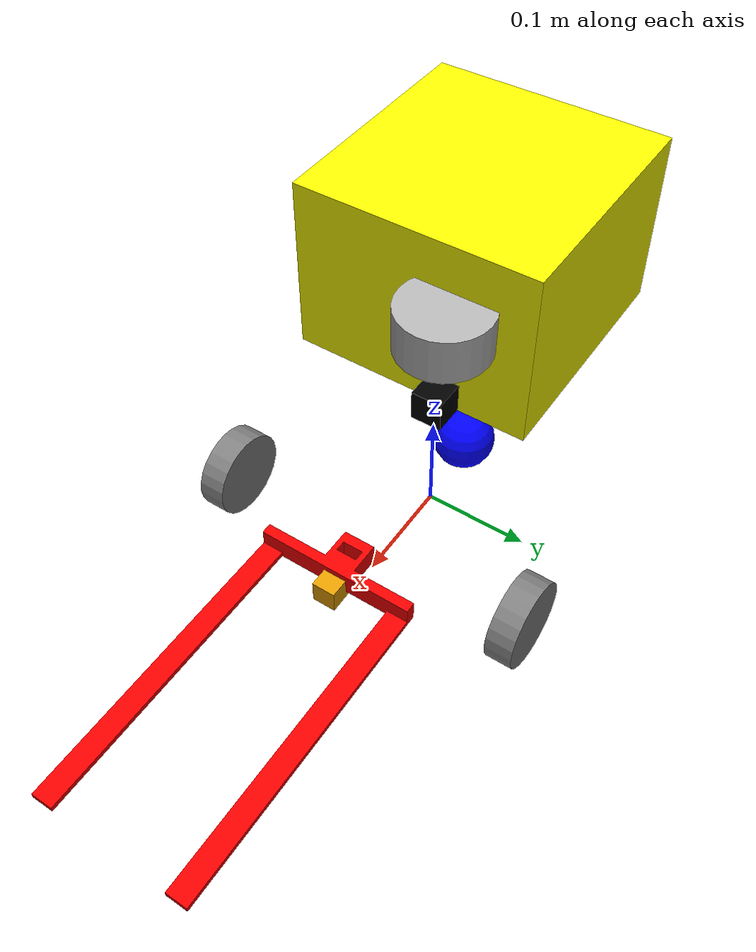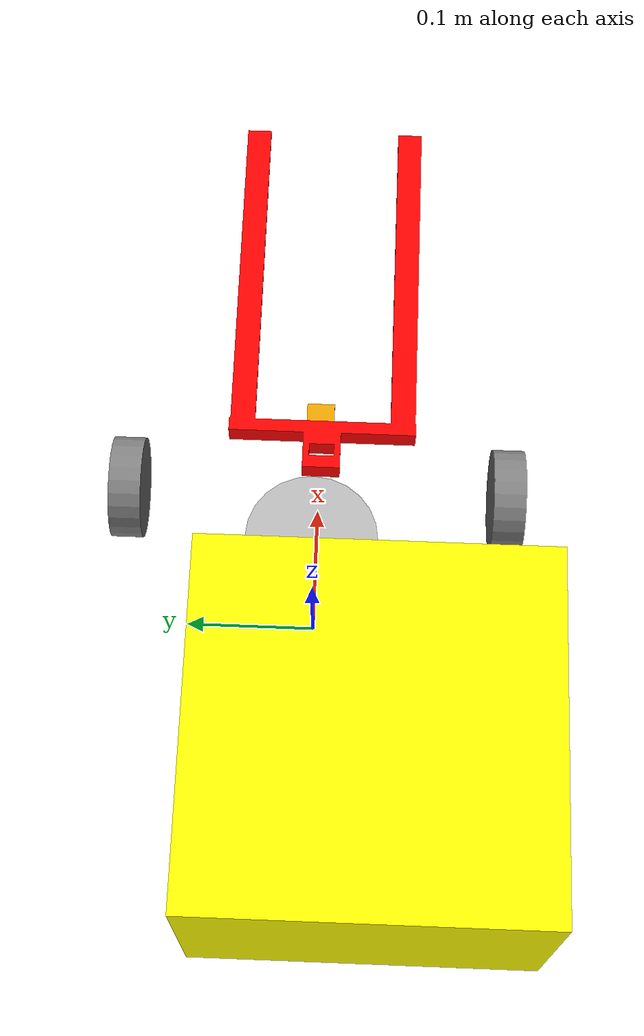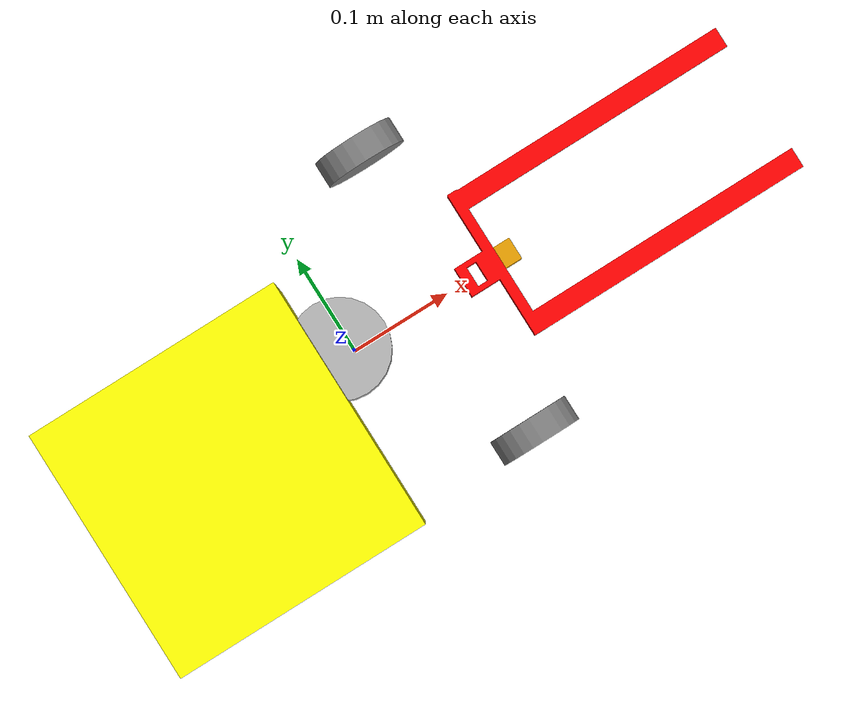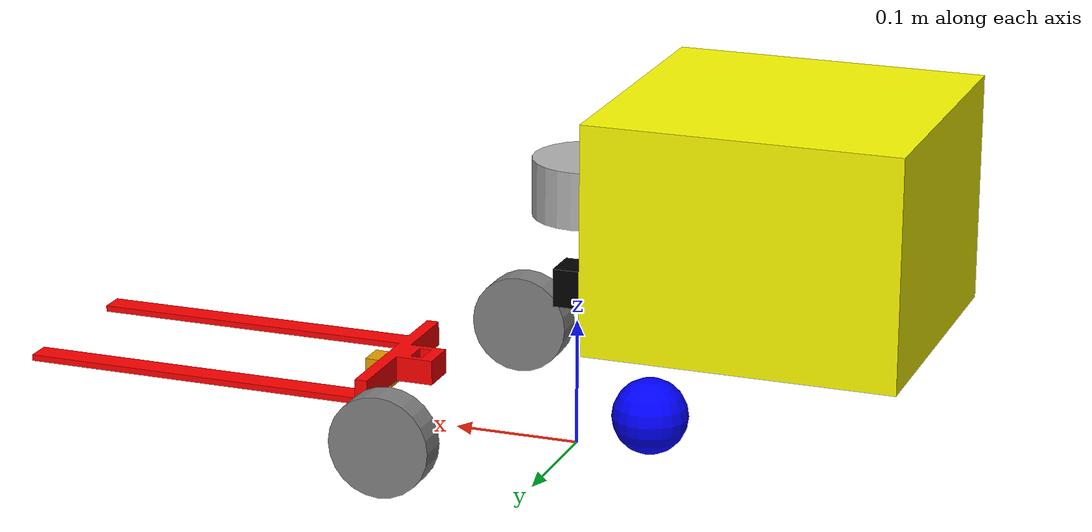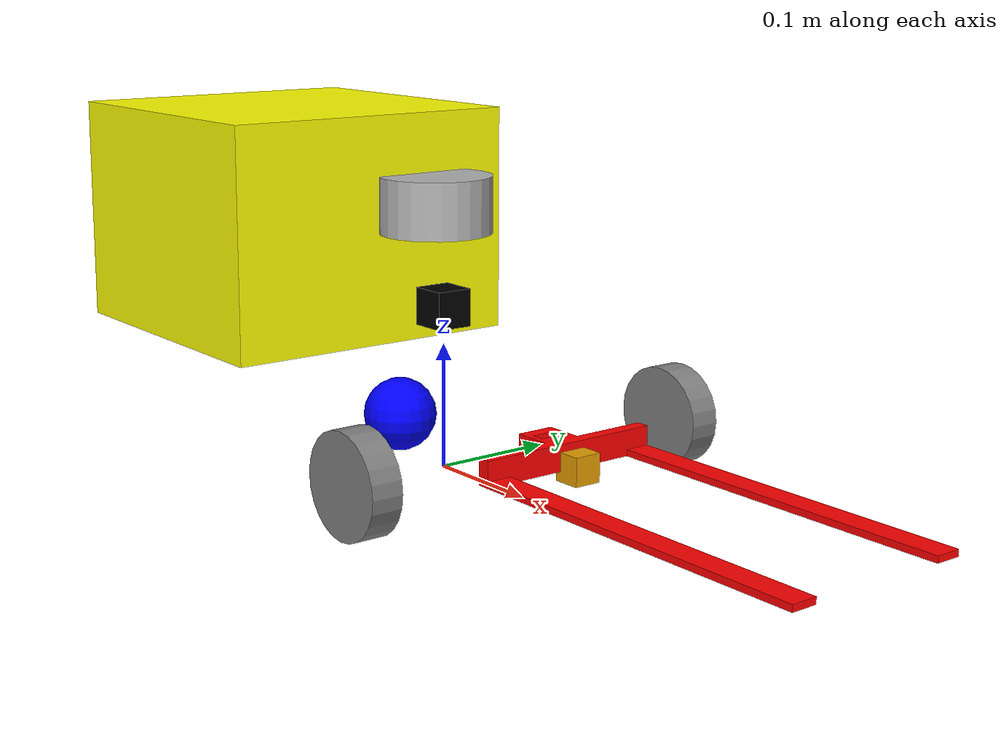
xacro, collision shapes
<?xml version="1.0"?>
<robot name="forklift" xmlns:xacro="http://www.ros.org/wiki/xacro">
    <xacro:arg name="GAZEBO" default="true"/>
    <xacro:arg name="wheel_odom_topic" default="odom" />
    <xacro:arg name="odometry_source" default="world" />
    <xacro:arg name="robot_name" default="" />

    <xacro:property name="odometry_source" value="$(arg odometry_source)"/>
    <xacro:property name="robot_name" value="$(arg robot_name)"/>
    <!-- Constants and Includes -->
     <xacro:include filename="$(find forklift_description)/urdf/const.xacro"/>
    <xacro:include filename="$(find forklift_description)/urdf/material.xacro"/>
    <xacro:include filename="$(find forklift_description)/urdf/inertia.xacro"/>
    <xacro:include filename="$(find forklift_description)/urdf/wheel.xacro"/>
    <xacro:include filename="$(find forklift_description)/urdf/lift.xacro"/>
    <xacro:include filename="$(find forklift_description)/urdf/transmission.xacro"/>

    <xacro:if value="$(arg GAZEBO)">
        <xacro:include filename="$(find forklift_description)/urdf/gazebo.xacro"/>
        <xacro:gz_plugins prefix="${robot_name}"/>
    </xacro:if>
    <xacro:unless value="$(arg GAZEBO)">
        <xacro:include filename="$(find forklift_description)/urdf/ros2_control.xacro"/>
    </xacro:unless>

    <!-- ................................ BASE LINK .................................. -->
    <link name="base_footprint"/>

    <link name="base_link">
        <visual>
            <origin xyz="-0.15 -0.045 0.15" rpy="0 0 3.14159"/>
            <geometry>
                <mesh filename="package://forklift_description/meshes/mini_forklift_base.stl" scale="0.001 0.001 0.001"/>
            </geometry>
            <material name="yellow"/>
        </visual>
        <collision>
            <origin xyz="-0.15 -0.045 0.15" rpy="0 0 3.14159"/>
            <geometry>
                <box size="${base_length} ${base_width} ${base_height}"/>
            </geometry>
        </collision>
        <xacro:box_inertia m="${mass_base}" x="${base_length}" y="${base_width}" z="${base_height}"/>
    </link>

    <joint name="base_joint" type="fixed">
        <parent link="base_footprint"/>
        <child link="base_link"/>
        <origin xyz="0.0 0.0 ${wheel_radius}" rpy="0 0 0"/>
    </joint>

    <!-- Wheels -->
    <xacro:wheel prefix="left_wheel" x_reflect="-1" y_reflect="1"/>
    <xacro:wheel prefix="right_wheel" x_reflect="1" y_reflect="-1"/>

    <!-- Fork lift -->
    <xacro:lift prefix="lift"/>

    <!-- Transmissions must come after joint definitions -->
    <xacro:add_transmissions/>

    <link name="front_caster">
        <visual>
            <geometry>
                <sphere radius="${caster_radius}"/>
            </geometry>
            <material name="Blue">
                <color rgba="0 0 1.0 1.0"/>
            </material>
        </visual>

        <collision>
            <geometry>
                <sphere radius="${caster_radius}"/>
            </geometry>
        </collision>
        <xacro:sphere_inertia m="${mass_caster}" r="${caster_radius}" />

    </link>

    <joint name="caster_joint" type="fixed">
        <parent link="base_link"/>
        <child link="front_caster"/>
        <origin xyz="${-1*caster_xoff} 0.0 -0.01" rpy="0 0 0"/>
    </joint>
    <gazebo reference="front_caster">
        <mu1>0.1</mu1>
        <mu2>0.1</mu2>
    </gazebo>

    <!-- IMU -->
    <link name='imu_link'>
        <visual>
            <geometry>
                <box size="0.03 0.03 0.03"/>
            </geometry>
            <material name="Black">
                <color rgba="0 0 0.0 1.0"/>
            </material>
        </visual>

        <collision>
            <geometry>
                <box size="0.03 0.03 0.03"/>
            </geometry>
        </collision>

        <xacro:box_inertia m="0.1" x="0.03" y="0.03" z="0.03"/>
    </link>

    <joint name='imu_joint' type='fixed'>
        <parent link='base_link'/>
        <child link='imu_link'/>
        <origin xyz="0.0 0.0 ${base_height/2}" rpy="0 0 0"/>
    </joint>

    <!-- RPLIDAR -->
    <link name="lidar_link">
        <visual>
            <origin xyz="0 0 -0.0" rpy="0 0 0"/>
            <geometry>
                <mesh filename="package://forklift_description/meshes/ydlidar_x2_assy.dae" scale="1 1 1"/>
            </geometry>
        </visual>
        <collision>
            <origin xyz="0 0 0" rpy="0 0 0"/>
            <geometry>
                <cylinder radius="${lidar_radius}" length="${lidar_length}"/>
            </geometry>
        </collision>
        <inertial>
            <origin xyz="0.007 0 0.025" rpy="0 0 0"/>
            <mass value="${mass_lidar}"/>
            <inertia ixx="0.000058" ixy="0" ixz="0.000005" iyy="0.000099" iyz="0" izz="0.000103"/>
        </inertial>
    </link>

    <joint name="lidar_joint" type="fixed">
        <parent link="base_link"/>
        <child link="lidar_link"/>
        <origin xyz="-0.01 0.0 ${base_height-0.01}" rpy="0 0 0"/>
    </joint>

    <!-- Raspberry Pi Camera V2 -->
    <link name="camera_link">
        <visual>
            <origin xyz="0 0 -0.0" rpy="0 0.0 0"/>
            <geometry>
                <mesh filename="package://forklift_description/meshes/front_camera.dae" scale="1 1 1"/>
            </geometry>
        </visual>
        <collision>
            <origin xyz="0 0 0" rpy="0 0.0 0"/>
            <geometry>
                <box size="${camera_width} ${camera_length} ${camera_height}"/>
            </geometry>
        </collision>
        <inertial>
            <origin xyz="0.005 0 0.013" rpy="0 0 0"/>
            <mass value="${mass_camera}"/>
            <inertia ixx="0.000005" ixy="0" ixz="-0.000001" iyy="0.000004" iyz="0" izz="0.000003"/>
        </inertial>
    </link>

    <joint name="camera_joint" type="fixed">
        <parent link="lift_link"/>
        <child link="camera_link"/>
        <origin xyz="0.01 0 0" rpy="0 0.0 0"/>
    </joint>

</robot>

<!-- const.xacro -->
<robot xmlns:xacro="http://www.ros.org/wiki/xacro">
    <xacro:property name="PI" value="3.141592653589793"/>

    <xacro:property name="base_length" value="0.245"/>
    <xacro:property name="base_width" value="0.2426"/>
    <xacro:property name="base_height" value="0.18"/>

    <!-- Mounting bolt pattern on base plate (from drawing sheet 2) -->
    <xacro:property name="base_bolt_pattern_x" value="0.150"/>
    <xacro:property name="base_bolt_pattern_y" value="0.110"/>
    <xacro:property name="base_bolt_hole_dia" value="0.020"/>
    <xacro:property name="base_plate_thickness" value="0.005"/>

    <!-- Kinematics -->
    <xacro:property name="wheel_radius" value="0.040"/>
    <xacro:property name="wheel_width" value="0.025"/>
    <xacro:property name="wheel_zoff" value="0.01"/>
    <xacro:property name="wheel_ygap" value="0.03"/>
    <xacro:property name="wheel_xoff" value="0.1"/>
    <xacro:property name="wheel_separation" value="0.3"/>

    <xacro:property name="caster_radius" value="0.03"/>
    <xacro:property name="caster_xoff" value="0.06"/>
    <xacro:property name="caster_yoff" value="0.0"/>

    <!-- ................................ LIFT SYSTEM ................................ -->
    <!-- Prismatic mast + forks riding on the front of base_link. -->
    <!-- lift_travel is a placeholder (150 mm stroke); set it to your actual mast stroke. -->
    <xacro:property name="lift_travel" value="0.15"/>
    <xacro:property name="lift_lower_limit" value="0.0"/>
    <xacro:property name="lift_upper_limit" value="${lift_travel}"/>
    <xacro:property name="lift_velocity" value="0.10"/>
    <xacro:property name="lift_effort" value="500"/>

    <!-- Where the lift joint mounts on base_link -->
    <xacro:property name="lift_xoff" value="${base_length/2}"/>
    <xacro:property name="lift_yoff" value="0.0"/>
    <xacro:property name="lift_zoff" value="${0}"/>

    <!-- Fork geometry (fork.stl) -->
    <xacro:property name="fork_length" value="0.30"/>
    <xacro:property name="fork_width" value="0.2426"/>
    <xacro:property name="fork_height" value="0.03"/>
    <xacro:property name="fork_xoff" value="0.10"/>

    <xacro:property name="mass_lift" value="1.0"/>
    <xacro:property name="mass_fork" value="0.5"/>

    <!-- Sensor -->
    <xacro:property name="imu_height" value="0.05"/>
    <xacro:property name="imu_offset" value="0.0"/>

    <xacro:property name="two_d_lidar_min_range" value="0.2"/>
    <xacro:property name="two_d_lidar_max_range" value="7"/>
    <xacro:property name="two_d_lidar_update_rate" value="30"/>

    <xacro:property name="lidar_length" value="0.045"/>
    <xacro:property name="lidar_radius" value="0.045"/>
    <xacro:property name="lidar_min_angle" value="0"/>
    <xacro:property name="lidar_max_angle" value="360"/>

    <xacro:property name="lidar_frame_id" value="lidar_link"/>
    <xacro:property name="camera_frame_id" value="camera_link"/>

    <xacro:property name="camera_width" value="0.022"/>
    <xacro:property name="camera_length" value="0.022"/>
    <xacro:property name="camera_height" value="0.022"/>

    <xacro:property name="ultrasonic_radius" value="0.02"/>
    <xacro:property name="ultrasonic_length" value="0.025"/>

    <!-- Define inertial properties  -->
    <xacro:property name="mass_base" value="3.0"/>
    <xacro:property name="mass_wheel" value="0.1"/>
    <xacro:property name="mass_caster" value="0.2"/>
    <xacro:property name="mass_imu" value="0.01"/>
    <xacro:property name="mass_lidar" value="0.150"/>
    <xacro:property name="mass_camera" value="0.050"/>

</robot>

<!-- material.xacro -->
<robot xmlns:xacro="http://www.ros.org/wiki/xacro">
    <material name="silver">
      <color rgba="0.7 0.7 0.7 1.0"/>
    </material>

    <material name="green">
      <color rgba="0.0 1.0 0.0 1.0"/>
    </material>

    <material name="black">
      <color rgba="0.0 0.0 0.0 1.0"/>
    </material>

    <material name="red">
      <color rgba="1.0 0.0 0.0 1.0"/>
    </material>

    <material name="blue">
      <color rgba="0.0 0.0 1.0 1.0"/>
    </material>

    <material name="white">
      <color rgba="1.0 1.0 1.0 1.0"/>
    </material>

    <material name="yellow">
      <color rgba="1.0 1.0 0.0 1.0"/>
    </material>

    <material name="orange">
      <color rgba="1.0 0.5 0.0 1.0"/>
    </material>

    <material name="gold">
      <color rgba="1.0 0.84 0.0 1.0"/>
    </material>

    <material name="gray">
      <color rgba="0.5 0.5 0.5 1.0"/>
    </material>

    <material name="turquoise">
        <color rgba="${64/255} ${224/255} ${208/255} 1.0"/>
    </material>

    <material name="purple">
        <color rgba="${128/255} ${0/255} ${128/255} 1.0"/>
    </material>

    <material name="aluminium">
        <color rgba="0.5 0.5 0.5 1"/>
    </material>

    <material name="plastic">
        <color rgba="0.1 0.1 0.1 1"/>
    </material>
</robot>

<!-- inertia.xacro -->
<robot xmlns:xacro="http://ros.org/wiki/xacro">
    <xacro:include filename="$(find forklift_description)/urdf/const.xacro"/>
    <!--................................ INERTIA MATRICES .............................. -->

    <xacro:macro name="cylinder_inertia" params="m r h">
        <inertial>
            <origin xyz="0 0 0" rpy="0 0 0"/>
            <mass value="${m}"/>
            <inertia
                ixx="${m * (3*r*r + h*h) / 12}" ixy="0" ixz="0"
                iyy="${m * (3*r*r + h*h) / 12}" iyz="0"
                izz="${m * r*r / 2}"/>
        </inertial>
    </xacro:macro>

    <xacro:macro name="box_inertia" params="m x y z">
        <inertial>
            <origin xyz="0 0 0" rpy="0 0 0"/>
            <mass value="${m}"/>
            <inertia
                ixx="${m * (y*y + z*z) / 12}" ixy="0" ixz="0"
                iyy="${m * (x*x + z*z) / 12}" iyz="0"
                izz="${m * (y*y + x*x) / 12}"/>
        </inertial>
    </xacro:macro>

    <xacro:macro name="sphere_inertia" params="m r">
        <inertial>
            <origin xyz="0 0 0" rpy="0 0 0"/>
            <mass value="${m}"/>
            <inertia ixx="${0.4 * m * r * r}" ixy="0" ixz="0"
                 iyy="${0.4 * m * r * r}" iyz="0"
                 izz="${0.4 * m * r * r}"/>
        </inertial>
    </xacro:macro>

    <!-- Wheel Inertia (rotated cylinder, longitudinal axis along Y) -->
    <xacro:macro name="wheel_inertia" params="m:=${mass_wheel} r:=${wheel_radius} h:=${wheel_width}">
        <inertial>
            <origin xyz="0 0 0" rpy="${PI/2} 0 0"/>
            <mass value="${m}"/>
            <inertia
                ixx="${m * (3*r*r + h*h) / 12}"
                ixy="0.0"
                ixz="0.0"
                iyy="${m * r*r / 2}"
                iyz="0.0"
                izz="${m * (3*r*r + h*h) / 12}"
            />
        </inertial>
    </xacro:macro>

</robot>

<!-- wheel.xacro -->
<robot xmlns:xacro="http://ros.org/wiki/xacro">
    <!-- Wheel Macro Definition -->
    <xacro:macro name="wheel" params="prefix x_reflect y_reflect">
        <!-- Wheel Link -->
        <link name="${prefix}_link">
            <visual>
                <origin xyz="0 0 0" rpy="${PI/2} 0 0"/>
                <geometry>
                    <mesh filename="package://forklift_description/meshes/wheel.stl" scale="0.001 0.001 0.001"/>
                </geometry>
                <material name="black">
                    <color rgba="0.5 0.5 0.5 1.0"/>
                </material>
            </visual>

            <collision>
                <origin xyz="0 0 0" rpy="${PI/2} 0 0"/>
                <geometry>
                    <cylinder radius="${wheel_radius}" length="${wheel_width}"/>
                </geometry>
            </collision>

            <xacro:wheel_inertia/>

        </link>

        <!-- Wheel Joint -->
        <joint name="${prefix}_joint" type="continuous">
            <parent link="base_link"/>
            <child link="${prefix}_link"/>
            <origin xyz="${wheel_xoff} ${y_reflect*(wheel_separation/2)} 0.0" rpy="0 0 0"/>
            <axis xyz="0 1 0"/>
            <dynamics damping="0.2"/>
        </joint>

        <!-- Gazebo Simulation Properties -->

        <gazebo reference="${prefix}_link">
            <material>Gazebo/Black</material>
            <mu>5.0</mu>
        </gazebo>
    </xacro:macro>

</robot>

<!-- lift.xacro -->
<robot xmlns:xacro="http://ros.org/wiki/xacro">
    <xacro:macro name="lift" params="prefix">

        <link name="${prefix}_link">
            <visual>
                <origin xyz="-0.59 -0.045 0.15" rpy="0 0 3.14159"/>
                <geometry>
                    <mesh filename="package://forklift_description/meshes/fork.stl" scale="0.002 0.001 0.001"/>
                </geometry>
                <material name="red"/>
            </visual>

            <collision>
                <origin xyz="-0.59 -0.045 0.15" rpy="0 0 3.14159"/>
                <geometry>
                    <mesh filename="package://forklift_description/meshes/fork.stl" scale="0.002 0.001 0.001"/>
                </geometry>
            </collision>

            <xacro:box_inertia m="${mass_fork}" x="${fork_length}" y="${fork_width}" z="${fork_height}"/>
        </link>

        <joint name="${prefix}_joint" type="prismatic">
            <parent link="base_link"/>
            <child link="${prefix}_link"/>
            <origin xyz="${lift_xoff+0.03} ${lift_yoff} ${lift_zoff}" rpy="0 0 0"/>
            <axis xyz="0 0 1"/>
            <limit lower="${lift_lower_limit}" upper="${lift_upper_limit}" effort="${lift_effort}" velocity="${lift_velocity}"/>
            <dynamics damping="5.0" friction="1.0"/>
        </joint>

        <gazebo reference="${prefix}_link">
            <material>Gazebo/Yellow</material>
            <mu1>10.0</mu1>
            <mu2>10.0</mu2>

            <kp>1000000</kp>
            <kd>10</kd>

            <max_contacts>20</max_contacts>

        </gazebo>

    </xacro:macro>
</robot>
